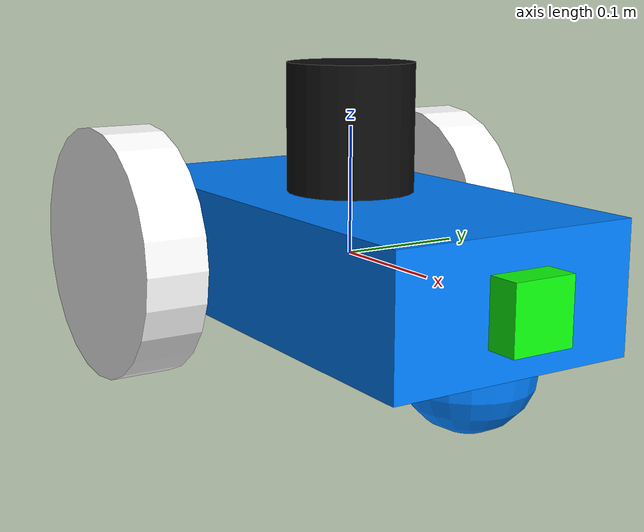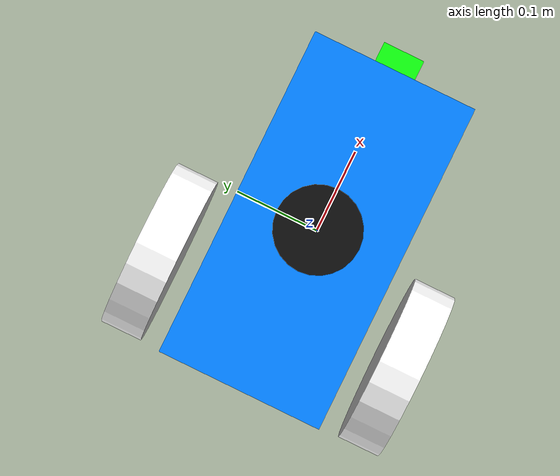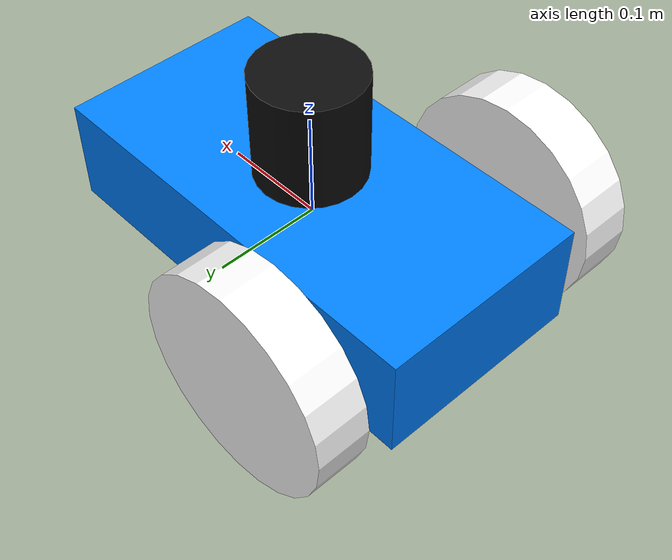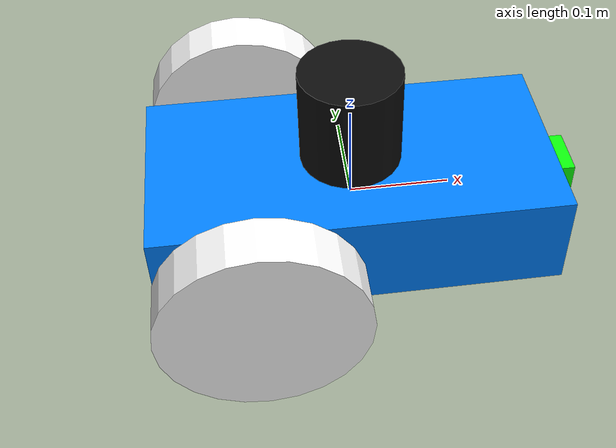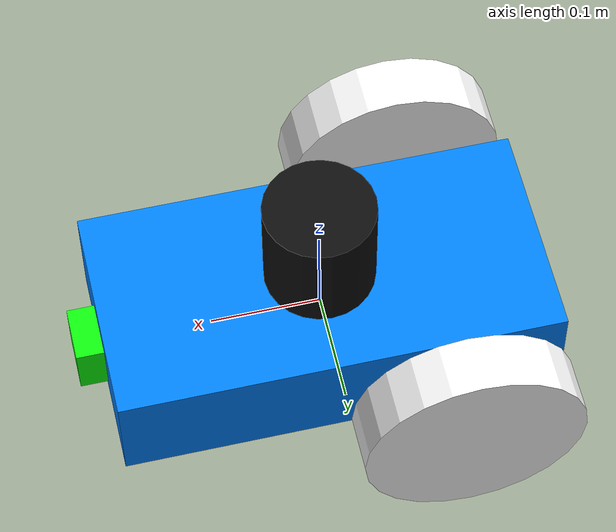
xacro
<?xml version = "1.0"?>
<!-- the xmlns:xacro part is required for the xacro to run properly -->
<robot name = "dd_robot" xmlns:xacro="http://www.ros.org/wiki/xacro">

  <xacro:include filename="$(find ros_robotics)/urdf/materials.xacro" />
  <xacro:include filename="$(find ros_robotics)/urdf/gazebo.xacro" />
  <xacro:include filename="$(find ros_robotics)/urdf/macros.xacro" />

  <xacro:property name="cameraSize" value="0.05"/>
  <xacro:property name="cameraMass" value="0.1"/>

  <!-- Base link description -->
  <!-- Differently from the sdf standard, the arguments are usually quoted -->
  <link name = "base_link">

	<visual>
	  <origin xyz = "0 0 0" rpy = "0 0 0 " />
	  <geometry>
		<box size = ".4 .2 .1" />
	  </geometry>
	  <material name="blue"/>
	</visual>

	<!-- Chassis collision -->
	<collision>
	  <geometry>
		<box size=".4 .2 .1"/>
	  </geometry>
	</collision>

	<!-- Inertial properties of the chassis -->
	<inertial>
	  <mass value="15"/>
	  <origin xyz="0.0 0 0.1" rpy = "0 0 0" />
	  <inertia ixx = "0.1" ixy = "0.0" ixz = "0.0"
	  		   iyy = "0.1" iyz = "0.0" izz = "0.1"/>
	</inertial>

	<!-- Front Caster -->
	<!-- The caster is inside of the base link. I couldn't create it a link because
		 it would need a joint to attach it to the base link -->
	<visual name="caster">
	  <origin xyz=".15 0 -0.05" rpy="0 0 0"/>
	  <geometry>
		<sphere radius="0.05"/>
	  </geometry>
	  <material name="blue"/>
	</visual>

	<!-- Caster collision -->
	<collision name='caster_collision'>
	  <origin xyz="0.15 0 -0.05" rpy="0 0 0"/>
	  <geometry>
		<sphere radius="0.05"/>
	  </geometry>
	  <surface>
		<friction>
		  <ode>
			<mu>0</mu>
			<mu2>0</mu2>
			<slip1>1.0</slip1>
			<slip2>1.0</slip2>
		  </ode>
		</friction>
	  </surface>
	</collision>

	<inertial>
	  <mass value="0.5"/>
	  <inertia ixx="0.0001" ixy="0.0" ixz="0.0"
			   iyy="0.0001" iyz="0.0" izz="0.0001"/>
	</inertial>

  </link>

  <link name="camera_link">
	<visual>
	  <origin xyz="0 0 0" rpy="0 0 0"/>
	  <geometry>
		<box size="${cameraSize} ${cameraSize} ${cameraSize}"/>
	  </geometry>
	  <material name="green"/>
	</visual>

	<collision>
	  <origin xyz="0 0 0" rpy="0 0 0"/>
	  <geometry>
		<box size="${cameraSize} ${cameraSize} ${cameraSize}"/>
	  </geometry>
	</collision>

	<inertial>
	  <mass value="${cameraMass}"/>
	  <inertia ixx="1e-6" ixy="0" ixz="0" iyy="1e-6" iyz="0" izz="1e-6"/>
	</inertial>
  </link>

  <joint name="camera_joint" type="fixed">
	<parent link="base_link"/>
	<child link="camera_link"/>
	<origin xyz="0.2 0.0 0.0" rpy="0 0 0"/>
	<axis xyz="0 1 0"/>
  </joint>

  <link name="laser_scanner">
	<visual>
	  <origin xyz="0 0 0" rpy="0 0 0"/>
	  <geometry>
		<cylinder length="0.1" radius="0.05"/>
	  </geometry>
	  <material name="black"/>
	</visual>

	<xacro:cylinder_inertia_z_axis mass="0.5" r="0.05" l="0.1"/>

	<collision>
	  <origin xyz="0 0 0" rpy="0 0 0"/>
	  <geometry>
		<cylinder length="0.1" radius="0.05"/>
	  </geometry>
	</collision>
  </link>

  <joint name="laser_scanner_joint" type="continuous">
	<parent link="base_link"/>
	<child link="laser_scanner"/>
	<origin xyz="0.0 0.0 0.1" rpy="0 0 0"/>
	<axis xyz="0 0 1"/>
  </joint>

  <!-- Right wheel -->
  <xacro:link_wheel name="right_wheel"/>
  <xacro:joint_wheel name="right" child="right_wheel" x="-0.1" y="-0.15" z="0.0"/>

  <!-- Left wheel -->
  <xacro:link_wheel name="left_wheel"/>
  <xacro:joint_wheel name="left" child="left_wheel" x="-0.1" y="0.15" z="0.0"/>

</robot>

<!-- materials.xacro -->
<robot>

  <material name="blue">
	<color rgba="0.0 0.5 1.0 1.0"/>
  </material>

  <material name="white">
	<color rgba="1.0 1.0 1.0 1.0"/>
  </material>

  <material name="black">
	<color rgba="0.05 0.05 0.05 1.0"/>
  </material>

  <material name="green">
	<color rgba="0.05 1.0 0.05 1.0"/>
  </material>

</robot>

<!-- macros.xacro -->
<robot xmlns:xacro="http://www.ros.org/wiki/xacro">

  <!-- https://en.wikipedia.org/wiki/List_of_moments_of_inertia#List_of_3D_inertia_tensors -->
  <xacro:macro name="cylinder_inertia_z_axis" params="mass r l">
	<inertial>
	  <mass value="${mass}"/>
	  <inertia ixx="${mass * (3 * r * r + l * l) / 12}" ixy="0.0" ixz="0.0"
			   iyy="${mass * (3 * r * r + l * l) / 12}" iyz="0.0"
			   izz="${mass *  (r * r) / 2}"/>
	</inertial>
  </xacro:macro>

  <xacro:macro name="cylinder_inertia_y_axis" params="mass r l">
	<inertial>
	  <mass value="${mass}"/>
	  <inertia ixx="${mass * (3 * r * r + l * l) / 12}" ixy="0.0" ixz="0.0"
			   iyy="${mass *  (r * r) / 2}" iyz="0.0"
			   izz="${mass * (3 * r * r + l * l) / 12}"/>
	</inertial>
  </xacro:macro>

  <!-- The origin of the wheel needs to be the same as the one for the base link
	   for easier desiging of the robot -->
  <xacro:macro name="link_wheel" params="name">
	<!-- Generic wheel -->
	<link name="${name}">
	  <visual>
		<origin xyz="0 0 0" rpy="1.570795 0 0" />
		<geometry>
		  <cylinder length="0.05" radius="0.1" />
		</geometry>
		<material name="white"/>
	  </visual>

	  <!-- Generic wheel collision -->
	  <collision>
		<origin xyz="0 0 0" rpy="1.570795 0 0"/>
		<geometry>
		  <cylinder length="0.05" radius="0.1"/>
		</geometry>
	  </collision>

	  <xacro:cylinder_inertia_y_axis mass="5" r="0.1" l="0.05"/>
	  <!-- Generic wheel inertial model -->
	  <!-- I've replaced this by a macro of cylinder inertial rotating -->
	  <!-- on the y axis. -->

	</link>
  </xacro:macro>

  <xacro:macro name="joint_wheel" params="name child x y z">
	<joint name="${name}_joint_wheel" type="continuous">
	  <parent link="base_link"/>
	  <child link="${child}"/>
	  <origin xyz="${x} ${y} ${z}" rpy="0 0 0" />
	  <axis xyz="0 1 0"/>
	</joint>
  </xacro:macro>

</robot>
